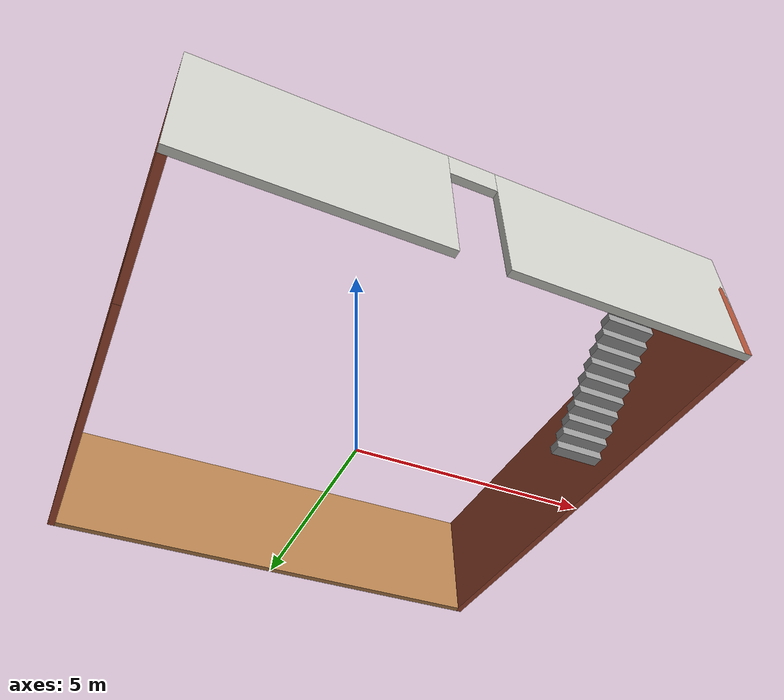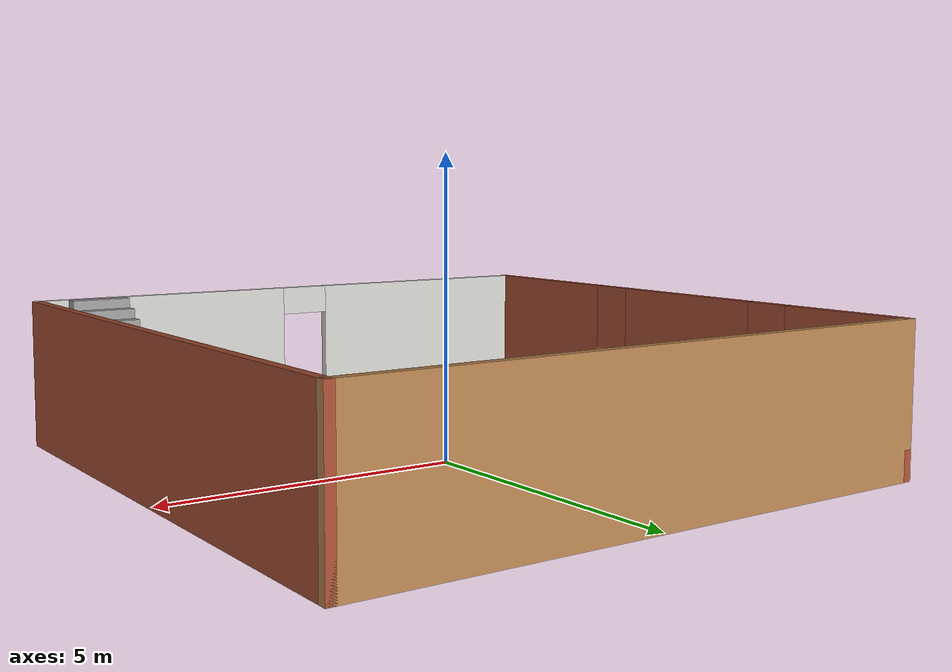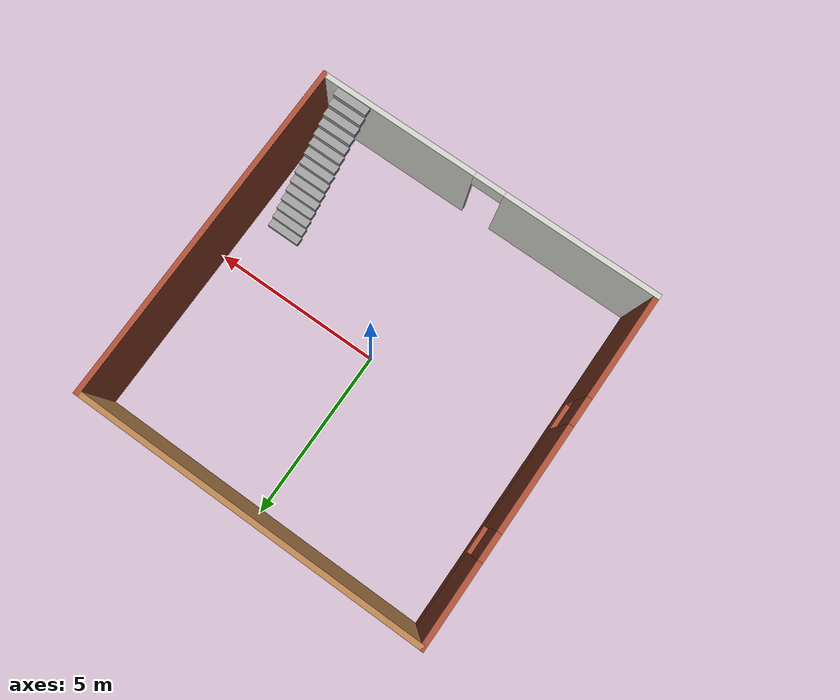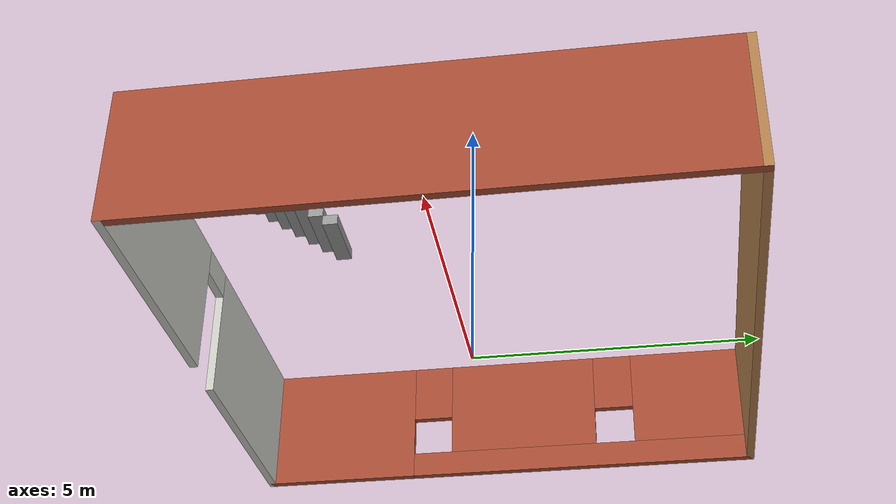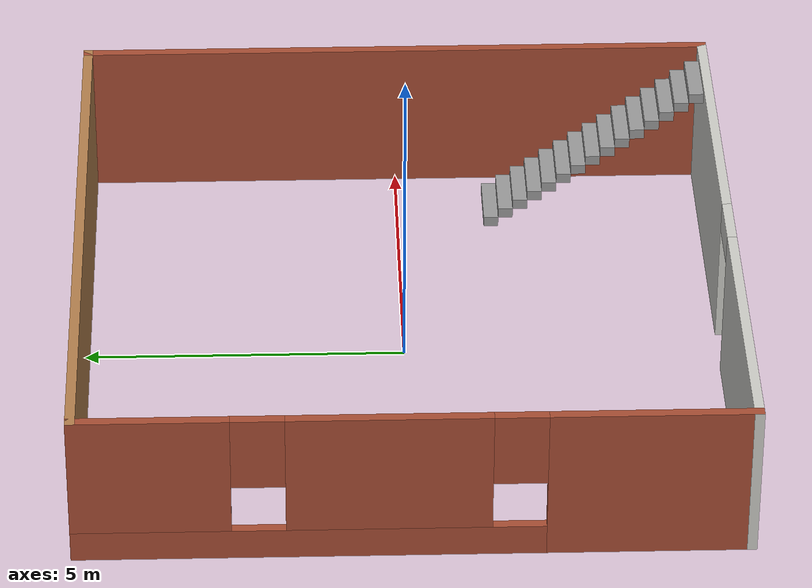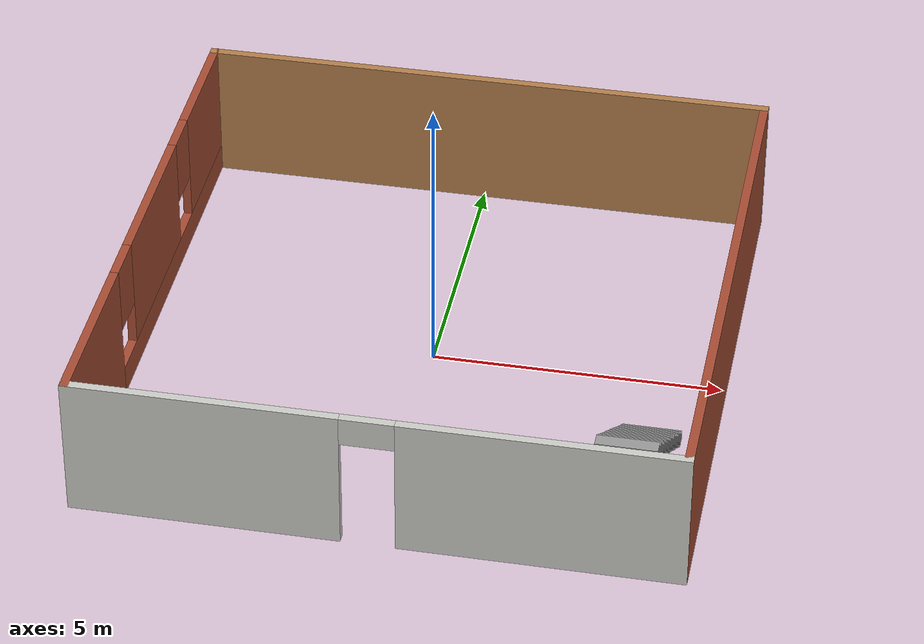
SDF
<?xml version='1.0'?>
<sdf version='1.7'>
  <model name='house'>
    <pose>0 0 0 0 -0 0</pose>
    <link name='Stairs_0'>
      <visual name='Stairs_0_Visual_0'>
        <pose>3.99723 -1.52724 0.083333 0 -0 0</pose>
        <geometry>
          <box>
            <size>1 0.233333 0.166667</size>
          </box>
        </geometry>
        <material>
          <script>
            <uri>file://media/materials/scripts/gazebo.material</uri>
            <name>Gazebo/Grey</name>
          </script>
          <ambient>1 1 1 1</ambient>
        </material>
        <meta>
          <layer>0</layer>
        </meta>
      </visual>
      <collision name='Stairs_0_Collision_0'>
        <geometry>
          <box>
            <size>1 0.233333 0.166667</size>
          </box>
        </geometry>
        <pose>3.99723 -1.52724 0.083333 0 -0 0</pose>
      </collision>
      <visual name='Stairs_0_Visual_1'>
        <pose>3.99723 -1.76057 0.25 0 -0 0</pose>
        <geometry>
          <box>
            <size>1 0.233333 0.166667</size>
          </box>
        </geometry>
        <material>
          <script>
            <uri>file://media/materials/scripts/gazebo.material</uri>
            <name>Gazebo/Grey</name>
          </script>
          <ambient>1 1 1 1</ambient>
        </material>
        <meta>
          <layer>0</layer>
        </meta>
      </visual>
      <collision name='Stairs_0_Collision_1'>
        <geometry>
          <box>
            <size>1 0.233333 0.166667</size>
          </box>
        </geometry>
        <pose>3.99723 -1.76057 0.25 0 -0 0</pose>
      </collision>
      <visual name='Stairs_0_Visual_2'>
        <pose>3.99723 -1.99391 0.416667 0 -0 0</pose>
        <geometry>
          <box>
            <size>1 0.233333 0.166667</size>
          </box>
        </geometry>
        <material>
          <script>
            <uri>file://media/materials/scripts/gazebo.material</uri>
            <name>Gazebo/Grey</name>
          </script>
          <ambient>1 1 1 1</ambient>
        </material>
        <meta>
          <layer>0</layer>
        </meta>
      </visual>
      <collision name='Stairs_0_Collision_2'>
        <geometry>
          <box>
            <size>1 0.233333 0.166667</size>
          </box>
        </geometry>
        <pose>3.99723 -1.99391 0.416667 0 -0 0</pose>
      </collision>
      <visual name='Stairs_0_Visual_3'>
        <pose>3.99723 -2.22724 0.583333 0 -0 0</pose>
        <geometry>
          <box>
            <size>1 0.233333 0.166667</size>
          </box>
        </geometry>
        <material>
          <script>
            <uri>file://media/materials/scripts/gazebo.material</uri>
            <name>Gazebo/Grey</name>
          </script>
          <ambient>1 1 1 1</ambient>
        </material>
        <meta>
          <layer>0</layer>
        </meta>
      </visual>
      <collision name='Stairs_0_Collision_3'>
        <geometry>
          <box>
            <size>1 0.233333 0.166667</size>
          </box>
        </geometry>
        <pose>3.99723 -2.22724 0.583333 0 -0 0</pose>
      </collision>
      <visual name='Stairs_0_Visual_4'>
        <pose>3.99723 -2.46057 0.75 0 -0 0</pose>
        <geometry>
          <box>
            <size>1 0.233333 0.166667</size>
          </box>
        </geometry>
        <material>
          <script>
            <uri>file://media/materials/scripts/gazebo.material</uri>
            <name>Gazebo/Grey</name>
          </script>
          <ambient>1 1 1 1</ambient>
        </material>
        <meta>
          <layer>0</layer>
        </meta>
      </visual>
      <collision name='Stairs_0_Collision_4'>
        <geometry>
          <box>
            <size>1 0.233333 0.166667</size>
          </box>
        </geometry>
        <pose>3.99723 -2.46057 0.75 0 -0 0</pose>
      </collision>
      <visual name='Stairs_0_Visual_5'>
        <pose>3.99723 -2.69391 0.916667 0 -0 0</pose>
        <geometry>
          <box>
            <size>1 0.233333 0.166667</size>
          </box>
        </geometry>
        <material>
          <script>
            <uri>file://media/materials/scripts/gazebo.material</uri>
            <name>Gazebo/Grey</name>
          </script>
          <ambient>1 1 1 1</ambient>
        </material>
        <meta>
          <layer>0</layer>
        </meta>
      </visual>
      <collision name='Stairs_0_Collision_5'>
        <geometry>
          <box>
            <size>1 0.233333 0.166667</size>
          </box>
        </geometry>
        <pose>3.99723 -2.69391 0.916667 0 -0 0</pose>
      </collision>
      <visual name='Stairs_0_Visual_6'>
        <pose>3.99723 -2.92724 1.08333 0 -0 0</pose>
        <geometry>
          <box>
            <size>1 0.233333 0.166667</size>
          </box>
        </geometry>
        <material>
          <script>
            <uri>file://media/materials/scripts/gazebo.material</uri>
            <name>Gazebo/Grey</name>
          </script>
          <ambient>1 1 1 1</ambient>
        </material>
        <meta>
          <layer>0</layer>
        </meta>
      </visual>
      <collision name='Stairs_0_Collision_6'>
        <geometry>
          <box>
            <size>1 0.233333 0.166667</size>
          </box>
        </geometry>
        <pose>3.99723 -2.92724 1.08333 0 -0 0</pose>
      </collision>
      <visual name='Stairs_0_Visual_7'>
        <pose>3.99723 -3.16057 1.25 0 -0 0</pose>
        <geometry>
          <box>
            <size>1 0.233333 0.166667</size>
          </box>
        </geometry>
        <material>
          <script>
            <uri>file://media/materials/scripts/gazebo.material</uri>
            <name>Gazebo/Grey</name>
          </script>
          <ambient>1 1 1 1</ambient>
        </material>
        <meta>
          <layer>0</layer>
        </meta>
      </visual>
      <collision name='Stairs_0_Collision_7'>
        <geometry>
          <box>
            <size>1 0.233333 0.166667</size>
          </box>
        </geometry>
        <pose>3.99723 -3.16057 1.25 0 -0 0</pose>
      </collision>
      <visual name='Stairs_0_Visual_8'>
        <pose>3.99723 -3.39391 1.41667 0 -0 0</pose>
        <geometry>
          <box>
            <size>1 0.233333 0.166667</size>
          </box>
        </geometry>
        <material>
          <script>
            <uri>file://media/materials/scripts/gazebo.material</uri>
            <name>Gazebo/Grey</name>
          </script>
          <ambient>1 1 1 1</ambient>
        </material>
        <meta>
          <layer>0</layer>
        </meta>
      </visual>
      <collision name='Stairs_0_Collision_8'>
        <geometry>
          <box>
            <size>1 0.233333 0.166667</size>
          </box>
        </geometry>
        <pose>3.99723 -3.39391 1.41667 0 -0 0</pose>
      </collision>
      <visual name='Stairs_0_Visual_9'>
        <pose>3.99723 -3.62724 1.58333 0 -0 0</pose>
        <geometry>
          <box>
            <size>1 0.233333 0.166667</size>
          </box>
        </geometry>
        <material>
          <script>
            <uri>file://media/materials/scripts/gazebo.material</uri>
            <name>Gazebo/Grey</name>
          </script>
          <ambient>1 1 1 1</ambient>
        </material>
        <meta>
          <layer>0</layer>
        </meta>
      </visual>
      <collision name='Stairs_0_Collision_9'>
        <geometry>
          <box>
            <size>1 0.233333 0.166667</size>
          </box>
        </geometry>
        <pose>3.99723 -3.62724 1.58333 0 -0 0</pose>
      </collision>
      <visual name='Stairs_0_Visual_10'>
        <pose>3.99723 -3.86057 1.75 0 -0 0</pose>
        <geometry>
          <box>
            <size>1 0.233333 0.166667</size>
          </box>
        </geometry>
        <material>
          <script>
            <uri>file://media/materials/scripts/gazebo.material</uri>
            <name>Gazebo/Grey</name>
          </script>
          <ambient>1 1 1 1</ambient>
        </material>
        <meta>
          <layer>0</layer>
        </meta>
      </visual>
      <collision name='Stairs_0_Collision_10'>
        <geometry>
          <box>
            <size>1 0.233333 0.166667</size>
          </box>
        </geometry>
        <pose>3.99723 -3.86057 1.75 0 -0 0</pose>
      </collision>
      <visual name='Stairs_0_Visual_11'>
        <pose>3.99723 -4.09391 1.91667 0 -0 0</pose>
        <geometry>
          <box>
            <size>1 0.233333 0.166667</size>
          </box>
        </geometry>
        <material>
          <script>
            <uri>file://media/materials/scripts/gazebo.material</uri>
            <name>Gazebo/Grey</name>
          </script>
          <ambient>1 1 1 1</ambient>
        </material>
        <meta>
          <layer>0</layer>
        </meta>
      </visual>
      <collision name='Stairs_0_Collision_11'>
        <geometry>
          <box>
            <size>1 0.233333 0.166667</size>
          </box>
        </geometry>
        <pose>3.99723 -4.09391 1.91667 0 -0 0</pose>
      </collision>
      <visual name='Stairs_0_Visual_12'>
        <pose>3.99723 -4.32724 2.08333 0 -0 0</pose>
        <geometry>
          <box>
            <size>1 0.233333 0.166667</size>
          </box>
        </geometry>
        <material>
          <script>
            <uri>file://media/materials/scripts/gazebo.material</uri>
            <name>Gazebo/Grey</name>
          </script>
          <ambient>1 1 1 1</ambient>
        </material>
        <meta>
          <layer>0</layer>
        </meta>
      </visual>
      <collision name='Stairs_0_Collision_12'>
        <geometry>
          <box>
            <size>1 0.233333 0.166667</size>
          </box>
        </geometry>
        <pose>3.99723 -4.32724 2.08333 0 -0 0</pose>
      </collision>
      <visual name='Stairs_0_Visual_13'>
        <pose>3.99723 -4.56057 2.25 0 -0 0</pose>
        <geometry>
          <box>
            <size>1 0.233333 0.166667</size>
          </box>
        </geometry>
        <material>
          <script>
            <uri>file://media/materials/scripts/gazebo.material</uri>
            <name>Gazebo/Grey</name>
          </script>
          <ambient>1 1 1 1</ambient>
        </material>
        <meta>
          <layer>0</layer>
        </meta>
      </visual>
      <collision name='Stairs_0_Collision_13'>
        <geometry>
          <box>
            <size>1 0.233333 0.166667</size>
          </box>
        </geometry>
        <pose>3.99723 -4.56057 2.25 0 -0 0</pose>
      </collision>
      <visual name='Stairs_0_Visual_14'>
        <pose>3.99723 -4.79391 2.41667 0 -0 0</pose>
        <geometry>
          <box>
            <size>1 0.233333 0.166667</size>
          </box>
        </geometry>
        <material>
          <script>
            <uri>file://media/materials/scripts/gazebo.material</uri>
            <name>Gazebo/Grey</name>
          </script>
          <ambient>1 1 1 1</ambient>
        </material>
        <meta>
          <layer>0</layer>
        </meta>
      </visual>
      <collision name='Stairs_0_Collision_14'>
        <geometry>
          <box>
            <size>1 0.233333 0.166667</size>
          </box>
        </geometry>
        <pose>3.99723 -4.79391 2.41667 0 -0 0</pose>
      </collision>
    </link>
    <link name='Wall_2'>
      <pose>0 -5 0 0 -0 0</pose>
      <visual name='Wall_2_Visual_0'>
        <pose>-2.80719 0 1.25 0 -0 0</pose>
        <geometry>
          <box>
            <size>4.53562 0.15 2.5</size>
          </box>
        </geometry>
        <material>
          <script>
            <uri>file://media/materials/scripts/gazebo.material</uri>
            <name>Gazebo/CeilingTiled</name>
          </script>
          <ambient>1 1 1 1</ambient>
        </material>
        <meta>
          <layer>0</layer>
        </meta>
      </visual>
      <collision name='Wall_2_Collision_0'>
        <geometry>
          <box>
            <size>4.53562 0.15 2.5</size>
          </box>
        </geometry>
        <pose>-2.80719 0 1.25 0 -0 0</pose>
      </collision>
      <visual name='Wall_2_Visual_1'>
        <pose>2.71781 0 1.25 0 -0 0</pose>
        <geometry>
          <box>
            <size>4.71438 0.15 2.5</size>
          </box>
        </geometry>
        <material>
          <script>
            <uri>file://media/materials/scripts/gazebo.material</uri>
            <name>Gazebo/CeilingTiled</name>
          </script>
          <ambient>1 1 1 1</ambient>
        </material>
        <meta>
          <layer>0</layer>
        </meta>
      </visual>
      <collision name='Wall_2_Collision_1'>
        <geometry>
          <box>
            <size>4.71438 0.15 2.5</size>
          </box>
        </geometry>
        <pose>2.71781 0 1.25 0 -0 0</pose>
      </collision>
      <visual name='Wall_2_Visual_2'>
        <pose>-0.089384 0 2.25 0 -0 0</pose>
        <geometry>
          <box>
            <size>0.9 0.15 0.5</size>
          </box>
        </geometry>
        <material>
          <script>
            <uri>file://media/materials/scripts/gazebo.material</uri>
            <name>Gazebo/CeilingTiled</name>
          </script>
          <ambient>1 1 1 1</ambient>
        </material>
        <meta>
          <layer>0</layer>
        </meta>
      </visual>
      <collision name='Wall_2_Collision_2'>
        <geometry>
          <box>
            <size>0.9 0.15 0.5</size>
          </box>
        </geometry>
        <pose>-0.089384 0 2.25 0 -0 0</pose>
      </collision>
    </link>
    <link name='Wall_5'>
      <collision name='Wall_5_Collision'>
        <geometry>
          <box>
            <size>10.15 0.15 2.5</size>
          </box>
        </geometry>
        <pose>0 0 1.25 0 -0 0</pose>
      </collision>
      <visual name='Wall_5_Visual'>
        <pose>0 0 1.25 0 -0 0</pose>
        <geometry>
          <box>
            <size>10.15 0.15 2.5</size>
          </box>
        </geometry>
        <material>
          <script>
            <uri>file://media/materials/scripts/gazebo.material</uri>
            <name>Gazebo/Bricks</name>
          </script>
          <ambient>1 1 1 1</ambient>
        </material>
        <meta>
          <layer>0</layer>
        </meta>
      </visual>
      <pose>5 0 0 0 -0 1.5708</pose>
    </link>
    <link name='Wall_7'>
      <pose>-5 0 0 0 -0 1.5708</pose>
      <visual name='Wall_7_Visual_0'>
        <pose>-3.51324 0 1.25 0 -0 0</pose>
        <geometry>
          <box>
            <size>3.12351 0.15 2.5</size>
          </box>
        </geometry>
        <material>
          <script>
            <uri>file://media/materials/scripts/gazebo.material</uri>
            <name>Gazebo/Bricks</name>
          </script>
          <ambient>1 1 1 1</ambient>
        </material>
        <meta>
          <layer>0</layer>
        </meta>
      </visual>
      <collision name='Wall_7_Collision_0'>
        <geometry>
          <box>
            <size>3.12351 0.15 2.5</size>
          </box>
        </geometry>
        <pose>-3.51324 0 1.25 0 -0 0</pose>
      </collision>
      <visual name='Wall_7_Visual_1'>
        <pose>1.56176 0 0.25 0 -0 0</pose>
        <geometry>
          <box>
            <size>7.02649 0.15 0.5</size>
          </box>
        </geometry>
        <material>
          <script>
            <uri>file://media/materials/scripts/gazebo.material</uri>
            <name>Gazebo/Bricks</name>
          </script>
          <ambient>1 1 1 1</ambient>
        </material>
        <meta>
          <layer>0</layer>
        </meta>
      </visual>
      <collision name='Wall_7_Collision_1'>
        <geometry>
          <box>
            <size>7.02649 0.15 0.5</size>
          </box>
        </geometry>
        <pose>1.56176 0 0.25 0 -0 0</pose>
      </collision>
      <visual name='Wall_7_Visual_2'>
        <pose>0.369359 0 1.5 0 -0 0</pose>
        <geometry>
          <box>
            <size>3.04169 0.15 2</size>
          </box>
        </geometry>
        <material>
          <script>
            <uri>file://media/materials/scripts/gazebo.material</uri>
            <name>Gazebo/Bricks</name>
          </script>
          <ambient>1 1 1 1</ambient>
        </material>
        <meta>
          <layer>0</layer>
        </meta>
      </visual>
      <collision name='Wall_7_Collision_2'>
        <geometry>
          <box>
            <size>3.04169 0.15 2</size>
          </box>
        </geometry>
        <pose>0.369359 0 1.5 0 -0 0</pose>
      </collision>
      <visual name='Wall_7_Visual_3'>
        <pose>3.8826 0 1.5 0 -0 0</pose>
        <geometry>
          <box>
            <size>2.38479 0.15 2</size>
          </box>
        </geometry>
        <material>
          <script>
            <uri>file://media/materials/scripts/gazebo.material</uri>
            <name>Gazebo/Bricks</name>
          </script>
          <ambient>1 1 1 1</ambient>
        </material>
        <meta>
          <layer>0</layer>
        </meta>
      </visual>
      <collision name='Wall_7_Collision_3'>
        <geometry>
          <box>
            <size>2.38479 0.15 2</size>
          </box>
        </geometry>
        <pose>3.8826 0 1.5 0 -0 0</pose>
      </collision>
      <visual name='Wall_7_Visual_4'>
        <pose>-1.55149 0 1.9 0 -0 0</pose>
        <geometry>
          <box>
            <size>0.8 0.15 1.2</size>
          </box>
        </geometry>
        <material>
          <script>
            <uri>file://media/materials/scripts/gazebo.material</uri>
            <name>Gazebo/Bricks</name>
          </script>
          <ambient>1 1 1 1</ambient>
        </material>
        <meta>
          <layer>0</layer>
        </meta>
      </visual>
      <collision name='Wall_7_Collision_4'>
        <geometry>
          <box>
            <size>0.8 0.15 1.2</size>
          </box>
        </geometry>
        <pose>-1.55149 0 1.9 0 -0 0</pose>
      </collision>
      <visual name='Wall_7_Visual_5'>
        <pose>2.2902 0 1.9 0 -0 0</pose>
        <geometry>
          <box>
            <size>0.8 0.15 1.2</size>
          </box>
        </geometry>
        <material>
          <script>
            <uri>file://media/materials/scripts/gazebo.material</uri>
            <name>Gazebo/Bricks</name>
          </script>
          <ambient>1 1 1 1</ambient>
        </material>
        <meta>
          <layer>0</layer>
        </meta>
      </visual>
      <collision name='Wall_7_Collision_5'>
        <geometry>
          <box>
            <size>0.8 0.15 1.2</size>
          </box>
        </geometry>
        <pose>2.2902 0 1.9 0 -0 0</pose>
      </collision>
    </link>
    <link name='Wall_8'>
      <collision name='Wall_8_Collision'>
        <geometry>
          <box>
            <size>10.15 0.15 2.5</size>
          </box>
        </geometry>
        <pose>0 0 1.25 0 -0 0</pose>
      </collision>
      <visual name='Wall_8_Visual'>
        <pose>0 0 1.25 0 -0 0</pose>
        <geometry>
          <box>
            <size>10.15 0.15 2.5</size>
          </box>
        </geometry>
        <material>
          <script>
            <uri>file://media/materials/scripts/gazebo.material</uri>
            <name>Gazebo/Wood</name>
          </script>
          <ambient>1 1 1 1</ambient>
        </material>
        <meta>
          <layer>0</layer>
        </meta>
      </visual>
      <pose>0 5 0 0 -0 0</pose>
    </link>
    <static>1</static>
  </model>
</sdf>
